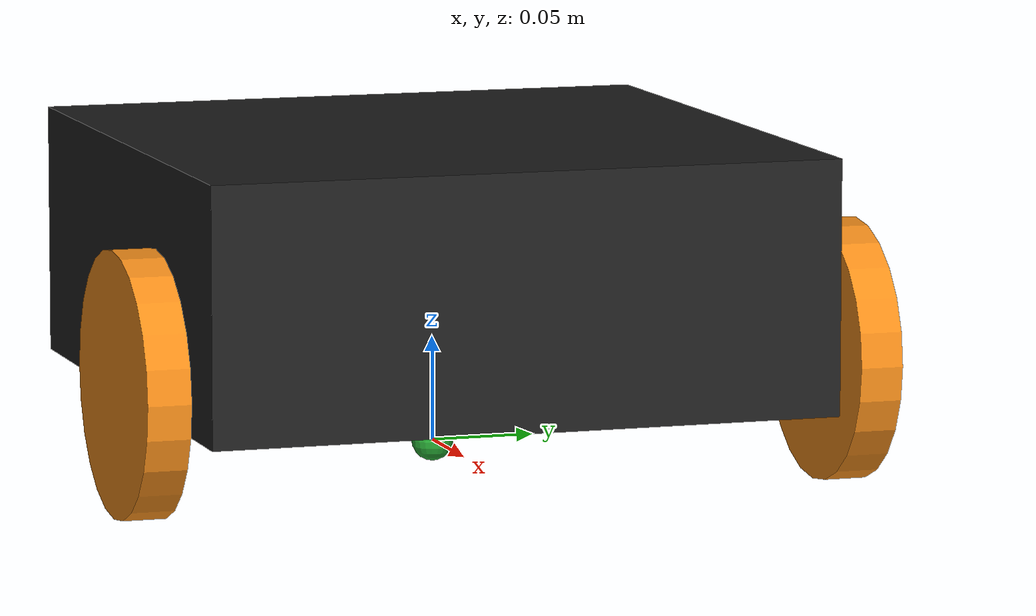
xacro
<?xml version="1.0"?>

<robot name="box_robot" xmlns:xacro="http://ros.org/wiki/xacro">

   <!-- Include all component files -->
   <xacro:include filename="$(find spark_urdf)/urdf/materials.urdf.xacro" />
   <xacro:include filename="$(find spark_urdf)/urdf/base.urdf.xacro" />

   <!-- Add the base and wheels -->
   <base name="base" color="Black"/>

</robot>

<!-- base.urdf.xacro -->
<robot name="base" xmlns:xacro="http://ros.org/wiki/xacro">

  <!-- Define a number of dimensions using properties -->
  <!-- set the mobile base physical parameter -->
  <property name="mass" value="1" />
  <property name="wheel_mass" value="0.2" />
  <property name="base_size_x" value="0.30" />
  <property name="base_size_y" value="0.30" />
  <property name="base_size_z" value="0.12" />
  <property name="wheel_length" value="0.02032" />
  <property name="wheel_radius" value="0.06191" />
  <property name="wheel_offset_x" value="0.09" />
  <property name="wheel_offset_y" value="0.17" />
  <property name="wheel_offset_z" value="-0.038" />

  <property name="PI" value="3.1415" />

  <!-- define a wheel -->
  <macro name="wheel" params="suffix parent reflect color">
    <joint name="${parent}_${suffix}_wheel_joint" type="continuous">
      <axis xyz="0 0 1" />
      <limit effort="100" velocity="100"/>
      <safety_controller k_velocity="10" />
      <origin xyz="${wheel_offset_x} ${reflect*wheel_offset_y} ${wheel_offset_z}" rpy="${-PI/2} 0 0" />
      <parent link="${parent}_link"/>
      <child link="${parent}_${suffix}_wheel_link"/>
    </joint>
    <link name="${parent}_${suffix}_wheel_link">
      <visual>
        <origin xyz="0 0 0" rpy="0 0 0" />
        <geometry>
          <cylinder radius="${wheel_radius}" length="${wheel_length}"/>
        </geometry>
        <material name="${color}" />
      </visual>
      <collision>
        <origin xyz="0 0 0" rpy="0 0 0" />
        <geometry>
          <cylinder radius="${wheel_radius}" length="${wheel_length}"/>
        </geometry>
        <material name="${color}" />
      </collision>
      <!-- just give random value-->
      <inertial>
      <mass value="${wheel_mass}" />
      <inertia ixx="${2.0 / 5.0 * wheel_mass * wheel_radius * wheel_radius}" ixy="0.0" ixz="0.0"
               iyy="${2.0 / 5.0 * wheel_mass * wheel_radius * wheel_radius}" iyz="0.0"
               izz="${2.0 / 5.0 * wheel_mass * wheel_radius * wheel_radius}" />
    </inertial>
    </link>
  </macro>

  <!-- The base xacro macro -->
  <macro name="base" params="name color">
    <link name="${name}_link">
      <visual>
        <origin xyz="0 0 0" rpy="0 0 0" />
        <geometry>
          <box size="${base_size_x} ${base_size_y} ${base_size_z}" />
        </geometry>
        <material name="${color}" />
      </visual>
      <collision>
        <origin xyz="0 0 0" rpy="0 0 0" />
        <geometry>
          <box size="${base_size_x} ${wheel_offset_y*2 + wheel_length} ${base_size_z}" />
        </geometry>
      </collision>
      <inertial>
      <origin xyz="0 0 ${base_size_z/2}" rpy="0 0 0"/>
      <mass value="${mass}"/>
      <inertia
	  ixx="${mass / 12.0 * (base_size_y*base_size_y + base_size_z*base_size_z)}" ixy="0.0" ixz="0.0"
	  iyy="${mass / 12.0 * (base_size_z*base_size_z + base_size_x*base_size_x)}" iyz="0.0"
	  izz="${mass / 12.0 * (base_size_x*base_size_x + base_size_y*base_size_y)}"/>
      </inertial>
    </link>
  </macro>

<!-- robot cycle center sometimes is not the robot center, specify it -->
  <link name="base_footprint">
      <visual>
        <origin xyz="0 0 0" rpy="0 0 0" />
        <geometry>
          <sphere radius="0.01"/>
        </geometry>
        <material name="TransparentGreen" />
      </visual>

      <collision>
        <origin xyz="0 0 0" rpy="0 0 0" />
        <geometry>
          <sphere radius="0.01"/>
        </geometry>
        <material name="TransparentGreen" />
      </collision>
        <inertial>
	<mass value="0.01"/>
        <origin xyz="0 0 0" rpy="0 0 0"/>
	<inertia
	  ixx="0.001" ixy="0.0" ixz="0.0"
	  iyy="0.001" iyz="0.0"
	  izz="0.001"/>
      </inertial>

  </link>

  <joint name="base_joint" type="fixed">
    <origin xyz="0 0 ${base_size_z/2 - wheel_offset_z - 0.01} " rpy="0 0 0" />
    <parent link="base_footprint"/>
    <child link="base_link" />
  </joint>

   <!-- Add the drive wheels -->
   <wheel parent="base" suffix="l" reflect="1" color="Orange"/>
   <wheel parent="base" suffix="r" reflect="-1" color="Orange"/>

  <xacro:include filename="$(find spark_urdf)/urdf/base.gazebo" />

  <transmission name="tran1">
    <type>transmission_interface/SimpleTransmission</type>
    <joint name="base_l_wheel_joint">
      <hardwareInterface>VelocityJointInterface</hardwareInterface>
    </joint>
    <actuator name="motor1">
      <hardwareInterface>VelocityJointInterface</hardwareInterface>
      <mechanicalReduction>1</mechanicalReduction>
    </actuator>
  </transmission>

  <transmission name="tran2">
    <type>transmission_interface/SimpleTransmission</type>
    <joint name="base_r_wheel_joint">
      <hardwareInterface>VelocityJointInterface</hardwareInterface>
    </joint>
    <actuator name="motor2">
      <hardwareInterface>VelocityJointInterface</hardwareInterface>
      <mechanicalReduction>-1</mechanicalReduction>
    </actuator>
  </transmission>

</robot>
